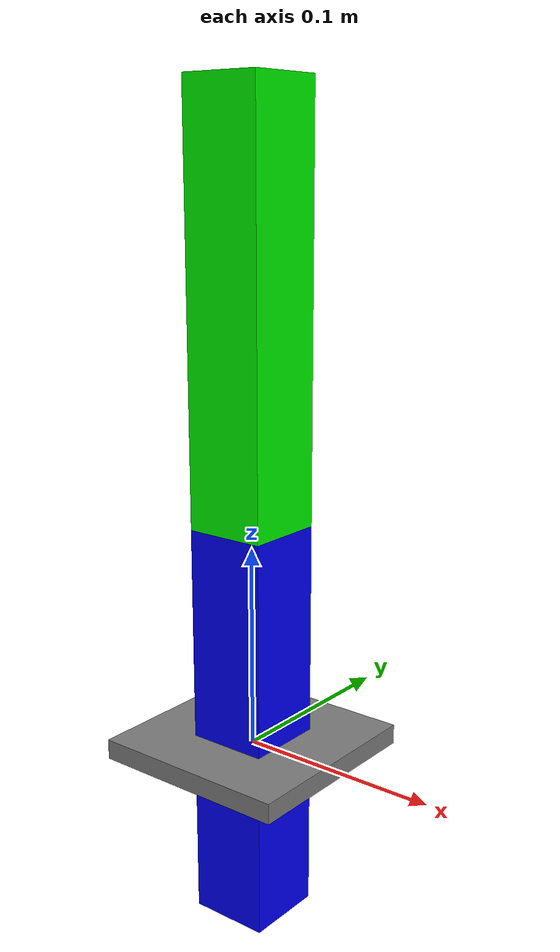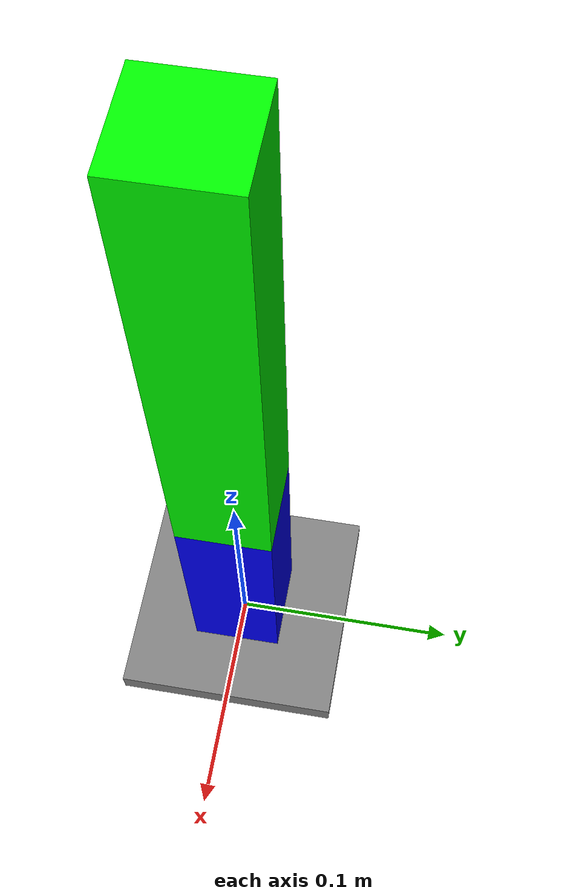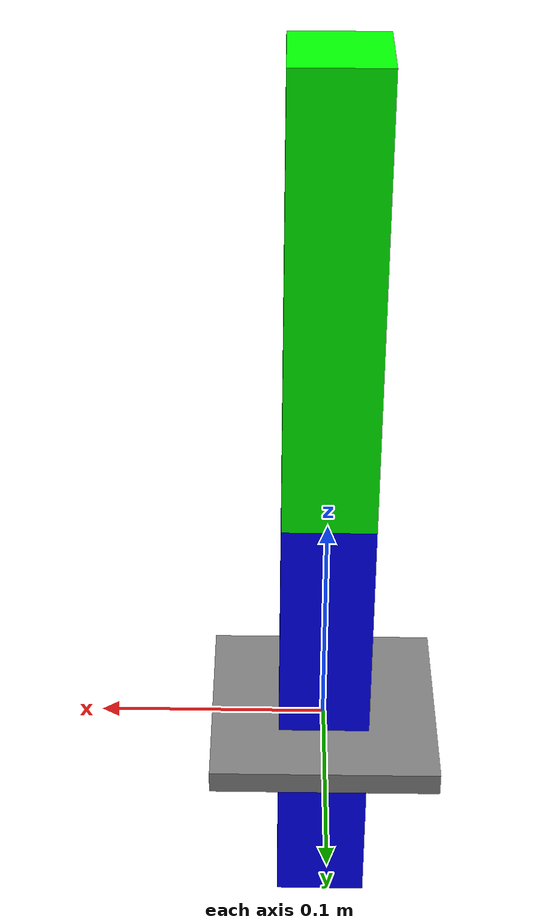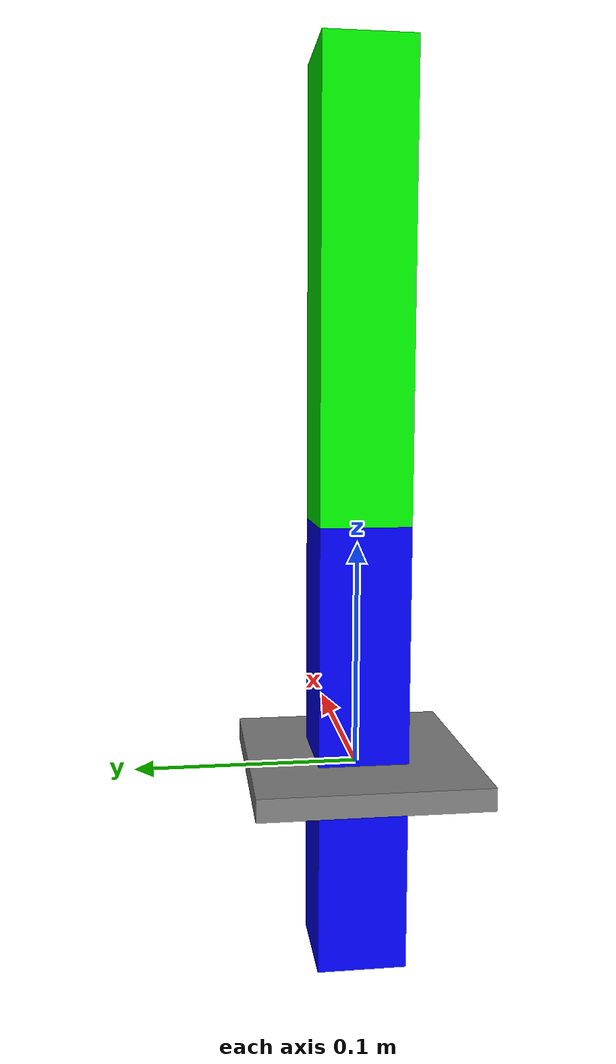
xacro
<?xml version="1.0"?>
<robot name="dofbot" xmlns:xacro="http://www.ros.org/wiki/xacro">

    <!-- Property Variables -->
    <xacro:property name="PI" value="3.14159265359"/>
    <xacro:property name="link_width" value="0.04"/>
    <xacro:property name="link_length" value="0.2"/>
    <xacro:property name="base_size" value="0.1"/>
    <xacro:property name="base_height" value="0.01"/>

    <!-- Base Link -->
    <link name="manipulator_base_link">
        <visual>
            <geometry>
                <box size="${base_size} ${base_size} ${base_height}"/>
            </geometry>
            <material name="Gray">
                <color rgba="0.5 0.5 0.5 1"/>
            </material>
        </visual>
        <collision>
            <geometry>
                <box size="${base_size} ${base_size} ${base_height}"/>
            </geometry>
        </collision>
        <inertial>
            <mass value="0.5"/>
            <inertia ixx="0.001" ixy="0" ixz="0" iyy="0.001" iyz="0" izz="0.001"/>
        </inertial>
    </link>

    <!-- Link1 -->
    <link name="link1">
        <visual>
            <geometry>
                <box size="${link_width} ${link_width} ${link_length}"/>
            </geometry>
            <material name="Blue">
                <color rgba="0 0 1 1"/>
            </material>
        </visual>
        <collision>
            <geometry>
                <box size="${link_width} ${link_width} ${link_length}"/>
            </geometry>
        </collision>
        <inertial>
            <mass value="0.2"/>
            <inertia ixx="0.0002" ixy="0" ixz="0" iyy="0.0002" iyz="0" izz="0.0002"/>
        </inertial>
    </link>

    <!-- Link2 -->
    <link name="link2">
        <visual>
            <geometry>
                <box size="${link_width} ${link_width} ${link_length}"/>
            </geometry>
            <material name="Green">
                <color rgba="0 1 0 1"/>
            </material>
        </visual>
        <collision>
            <geometry>
                <box size="${link_width} ${link_width} ${link_length}"/>
            </geometry>
        </collision>
        <inertial>
            <mass value="0.2"/>
            <inertia ixx="0.0002" ixy="0" ixz="0" iyy="0.0002" iyz="0" izz="0.0002"/>
        </inertial>
    </link>

    <!-- Joint1: Base -> Link1 -->
    <joint name="joint1" type="revolute">
        <parent link="manipulator_base_link"/>
        <child link="link1"/>
        <origin xyz="0 0 ${base_height}" rpy="0 0 0"/>
        <axis xyz="0 0 1"/>
        <limit lower="-${PI}" upper="${PI}" velocity="0.5" effort="10.0"/>
    </joint>

    <!-- Joint2: Link1 -> Link2 -->
    <joint name="joint2" type="revolute">
        <parent link="link1"/>
        <child link="link2"/>
        <origin xyz="0 0 ${link_length}" rpy="0 0 0"/>
        <axis xyz="0 1 0"/>
        <limit lower="-1.57" upper="1.57" velocity="0.5" effort="10.0"/>
    </joint>

</robot>
